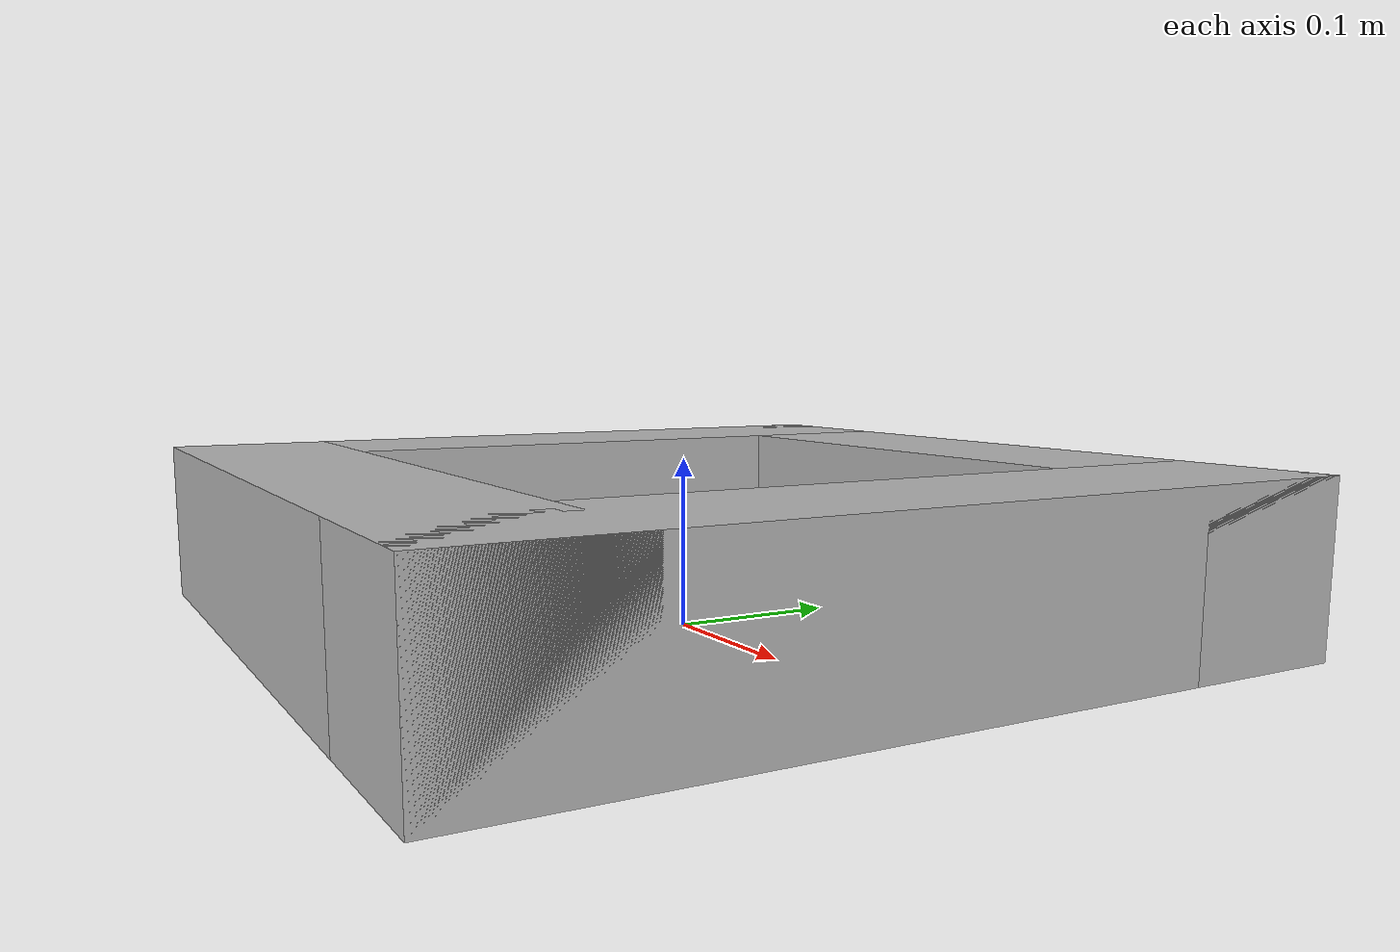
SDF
<?xml version="1.0" ?>
<sdf version='1.6'>
  <model name='fourbar'>
    <link name="link1">
      <pose>0 0.2 0.05 0 0 0</pose>
      <inertial>
        <mass>0.1</mass>
        <inertia>
          <ixx>0.0001666666666666667</ixx>
          <ixy>0</ixy>
          <ixz>0</ixz>
          <iyy>0.0021666666666666666</iyy>
          <iyz>0</iyz>
          <izz>0.0021666666666666666</izz>
        </inertia>
      </inertial>
      <collision name="collision">
        <geometry>
          <box><size>0.5 0.1 0.1</size></box>
        </geometry>
      </collision>
      <visual name="visual">
        <geometry>
          <box><size>0.5 0.1 0.1</size></box>
        </geometry>
      </visual>
    </link>

    <link name="link2">
      <pose>0.2 0 0.05 0 0 0</pose>
      <inertial>
        <mass>0.1</mass>
        <inertia>
          <ixx>0.0021666666666666666</ixx>
          <ixy>0</ixy>
          <ixz>0</ixz>
          <iyy>0.0001666666666666667</iyy>
          <iyz>0</iyz>
          <izz>0.0021666666666666666</izz>
        </inertia>
      </inertial>
      <collision name="collision">
        <geometry>
          <box><size>0.1 0.5 0.1</size></box>
        </geometry>
      </collision>
      <visual name="visual">
        <geometry>
          <box><size>0.1 0.5 0.1</size></box>
        </geometry>
      </visual>
    </link>

    <link name="link3">
      <pose>0 -0.2 0.05 0 0 0</pose>
      <inertial>
        <mass>0.1</mass>
        <inertia>
          <ixx>0.0001666666666666667</ixx>
          <ixy>0</ixy>
          <ixz>0</ixz>
          <iyy>0.0021666666666666666</iyy>
          <iyz>0</iyz>
          <izz>0.0021666666666666666</izz>
        </inertia>
      </inertial>
      <collision name="collision">
        <geometry>
          <box><size>0.5 0.1 0.1</size></box>
        </geometry>
      </collision>

      <visual name="visual">
        <geometry>
          <box><size>0.5 0.1 0.1</size></box>
        </geometry>
      </visual>
    </link>

    <link name="link4">
      <pose>-0.2 0 0.05 0 0 0</pose>
      <inertial>
        <mass>0.1</mass>
        <inertia>
          <ixx>0.0021666666666666666</ixx>
          <ixy>0</ixy>
          <ixz>0</ixz>
          <iyy>0.0001666666666666667</iyy>
          <iyz>0</iyz>
          <izz>0.0021666666666666666</izz>
        </inertia>
      </inertial>
      <collision name="collision">
        <geometry>
          <box><size>0.1 0.5 0.1</size></box>
        </geometry>
      </collision>

      <visual name="visual">
        <geometry>
          <box><size>0.1 0.5 0.1</size></box>
        </geometry>
      </visual>
    </link>

    <joint name="joint1" type="revolute">
      <parent>link1</parent>
      <child>link2</child>
      <pose>0 0.2 0 0 0 0</pose>
      <axis>
        <xyz>0 0 1</xyz>
        <limit>
          <lower>-3.14</lower>
          <upper>3.14</upper>
        </limit>
      </axis>
    </joint>

    <joint name="joint2" type="revolute">
      <parent>link2</parent>
      <child>link3</child>
      <pose>0.2 0 0 0 0 0</pose>
      <axis>
        <xyz>0 0 1</xyz>
        <limit>
          <lower>-3.14</lower>
          <upper>3.14</upper>
        </limit>
      </axis>
    </joint>

    <joint name="joint3" type="revolute">
      <parent>link3</parent>
      <child>link4</child>
      <pose>0 -0.2 0 0 0 0</pose>
      <axis>
        <xyz>0 0 1</xyz>
        <limit>
          <lower>-3.14</lower>
          <upper>3.14</upper>
        </limit>
      </axis>
    </joint>

    <joint name="joint4" type="revolute">
      <parent>link4</parent>
      <child>link1</child>
      <pose>-0.2 0 0 0 0 0</pose>
      <axis>
        <xyz>0 0 1</xyz>
        <limit>
          <lower>-3.14</lower>
          <upper>3.14</upper>
        </limit>
      </axis>
    </joint>
  </model>
</sdf>
